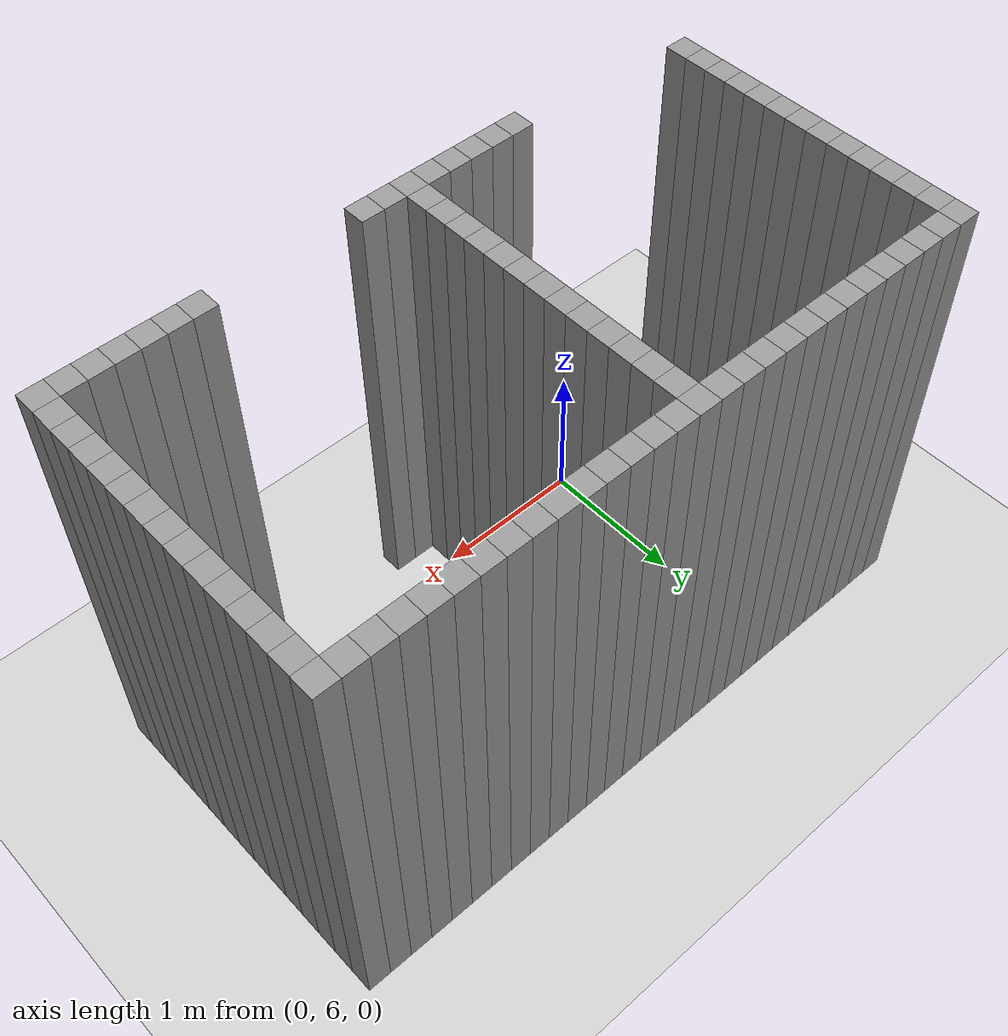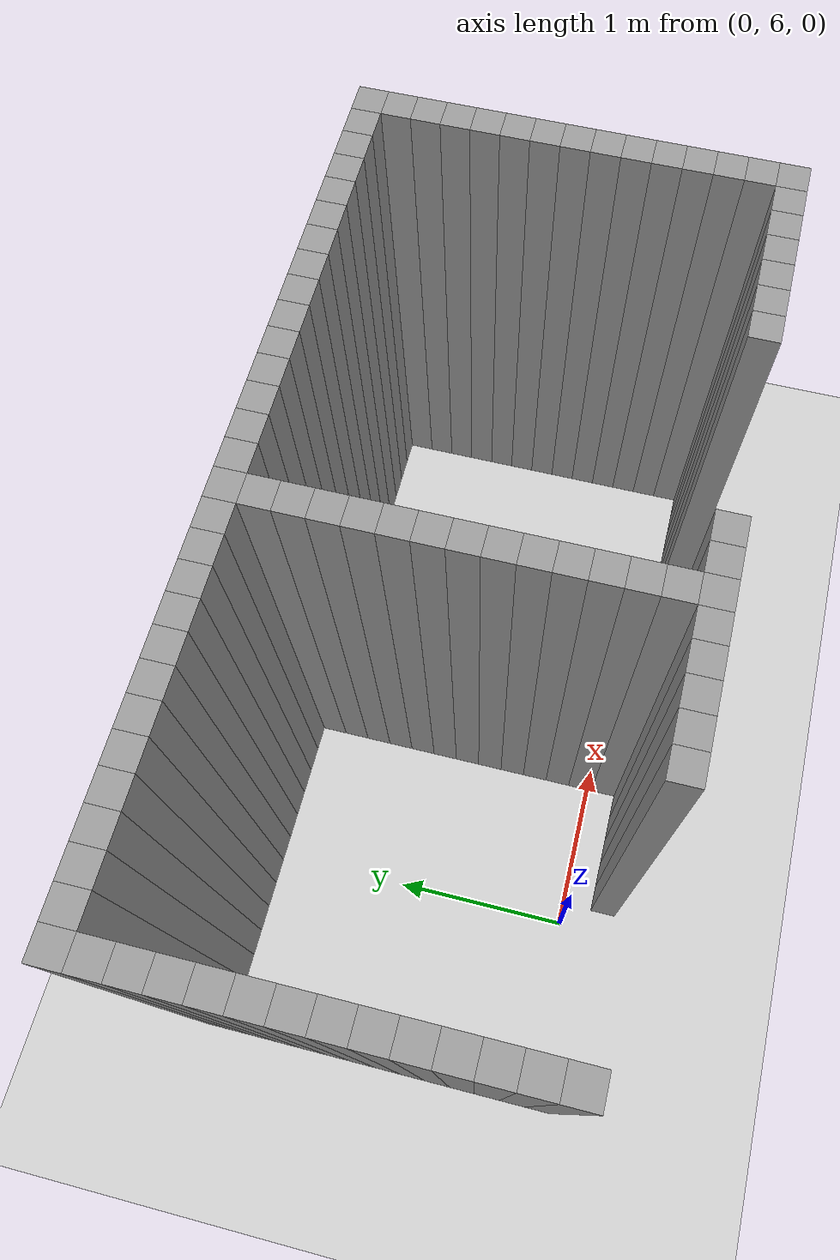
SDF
<sdf version="1.7">
 <world name="default">
  <model name="ground_plane">
   <static>1</static>
   <link name="link">
    <collision name="collision">
     <geometry><plane><normal>0 0 1</normal><size>100 100</size></plane></geometry>
     <surface>
      <contact><collide_bitmask>65535</collide_bitmask></contact>
      <friction><ode><mu>100</mu><mu2>50</mu2></ode></friction>
     </surface>
    </collision>
    <visual name="visual">
     <cast_shadows>0</cast_shadows>
     <geometry><plane><normal>0 0 1</normal><size>100 100</size></plane></geometry>
     <material>
      <script><uri>file://media/materials/scripts/gazebo.material</uri><name>Gazebo/Grey</name></script>
     </material>
    </visual>
   </link>
  </model>
  <model name="image45003">
   <pose>-1 -1 0 0 -0 0</pose>
   <link name="Wall_46">
    <collision name="Wall_46_Collision">
     <geometry><box><size>0.15 0.15 3</size></box></geometry>
     <pose>0 0 1.5 0 -0 0</pose>
    </collision>
    <visual name="Wall_46_Visual">
     <pose>0 0 1.5 0 -0 0</pose>
     <geometry><box><size>0.15 0.15 3</size></box></geometry>
     <material>
      <script><uri>file://media/materials/scripts/gazebo.material</uri><name>Gazebo/Grey</name></script>
      <ambient>1 1 1 1</ambient>
     </material>
     <meta><layer>0</layer></meta>
    </visual>
    <pose>0.0 6.8999999999999995 0 0 -0 0</pose>
   </link>
   <link name="Wall_47">
    <collision name="Wall_47_Collision">
     <geometry><box><size>0.15 0.15 3</size></box></geometry>
     <pose>0 0 1.5 0 -0 0</pose>
    </collision>
    <visual name="Wall_47_Visual">
     <pose>0 0 1.5 0 -0 0</pose>
     <geometry><box><size>0.15 0.15 3</size></box></geometry>
     <material>
      <script><uri>file://media/materials/scripts/gazebo.material</uri><name>Gazebo/Grey</name></script>
      <ambient>1 1 1 1</ambient>
     </material>
     <meta><layer>0</layer></meta>
    </visual>
    <pose>0.0 7.05 0 0 -0 0</pose>
   </link>
   <link name="Wall_48">
    <collision name="Wall_48_Collision">
     <geometry><box><size>0.15 0.15 3</size></box></geometry>
     <pose>0 0 1.5 0 -0 0</pose>
    </collision>
    <visual name="Wall_48_Visual">
     <pose>0 0 1.5 0 -0 0</pose>
     <geometry><box><size>0.15 0.15 3</size></box></geometry>
     <material>
      <script><uri>file://media/materials/scripts/gazebo.material</uri><name>Gazebo/Grey</name></script>
      <ambient>1 1 1 1</ambient>
     </material>
     <meta><layer>0</layer></meta>
    </visual>
    <pose>0.0 7.199999999999999 0 0 -0 0</pose>
   </link>
   <link name="Wall_49">
    <collision name="Wall_49_Collision">
     <geometry><box><size>0.15 0.15 3</size></box></geometry>
     <pose>0 0 1.5 0 -0 0</pose>
    </collision>
    <visual name="Wall_49_Visual">
     <pose>0 0 1.5 0 -0 0</pose>
     <geometry><box><size>0.15 0.15 3</size></box></geometry>
     <material>
      <script><uri>file://media/materials/scripts/gazebo.material</uri><name>Gazebo/Grey</name></script>
      <ambient>1 1 1 1</ambient>
     </material>
     <meta><layer>0</layer></meta>
    </visual>
    <pose>0.0 7.35 0 0 -0 0</pose>
   </link>
   <link name="Wall_50">
    <collision name="Wall_50_Collision">
     <geometry><box><size>0.15 0.15 3</size></box></geometry>
     <pose>0 0 1.5 0 -0 0</pose>
    </collision>
    <visual name="Wall_50_Visual">
     <pose>0 0 1.5 0 -0 0</pose>
     <geometry><box><size>0.15 0.15 3</size></box></geometry>
     <material>
      <script><uri>file://media/materials/scripts/gazebo.material</uri><name>Gazebo/Grey</name></script>
      <ambient>1 1 1 1</ambient>
     </material>
     <meta><layer>0</layer></meta>
    </visual>
    <pose>0.0 7.5 0 0 -0 0</pose>
   </link>
   <link name="Wall_51">
    <collision name="Wall_51_Collision">
     <geometry><box><size>0.15 0.15 3</size></box></geometry>
     <pose>0 0 1.5 0 -0 0</pose>
    </collision>
    <visual name="Wall_51_Visual">
     <pose>0 0 1.5 0 -0 0</pose>
     <geometry><box><size>0.15 0.15 3</size></box></geometry>
     <material>
      <script><uri>file://media/materials/scripts/gazebo.material</uri><name>Gazebo/Grey</name></script>
      <ambient>1 1 1 1</ambient>
     </material>
     <meta><layer>0</layer></meta>
    </visual>
    <pose>0.0 7.6499999999999995 0 0 -0 0</pose>
   </link>
   <link name="Wall_52">
    <collision name="Wall_52_Collision">
     <geometry><box><size>0.15 0.15 3</size></box></geometry>
     <pose>0 0 1.5 0 -0 0</pose>
    </collision>
    <visual name="Wall_52_Visual">
     <pose>0 0 1.5 0 -0 0</pose>
     <geometry><box><size>0.15 0.15 3</size></box></geometry>
     <material>
      <script><uri>file://media/materials/scripts/gazebo.material</uri><name>Gazebo/Grey</name></script>
      <ambient>1 1 1 1</ambient>
     </material>
     <meta><layer>0</layer></meta>
    </visual>
    <pose>0.0 7.8 0 0 -0 0</pose>
   </link>
   <link name="Wall_53">
    <collision name="Wall_53_Collision">
     <geometry><box><size>0.15 0.15 3</size></box></geometry>
     <pose>0 0 1.5 0 -0 0</pose>
    </collision>
    <visual name="Wall_53_Visual">
     <pose>0 0 1.5 0 -0 0</pose>
     <geometry><box><size>0.15 0.15 3</size></box></geometry>
     <material>
      <script><uri>file://media/materials/scripts/gazebo.material</uri><name>Gazebo/Grey</name></script>
      <ambient>1 1 1 1</ambient>
     </material>
     <meta><layer>0</layer></meta>
    </visual>
    <pose>0.0 7.949999999999999 0 0 -0 0</pose>
   </link>
   <link name="Wall_54">
    <collision name="Wall_54_Collision">
     <geometry><box><size>0.15 0.15 3</size></box></geometry>
     <pose>0 0 1.5 0 -0 0</pose>
    </collision>
    <visual name="Wall_54_Visual">
     <pose>0 0 1.5 0 -0 0</pose>
     <geometry><box><size>0.15 0.15 3</size></box></geometry>
     <material>
      <script><uri>file://media/materials/scripts/gazebo.material</uri><name>Gazebo/Grey</name></script>
      <ambient>1 1 1 1</ambient>
     </material>
     <meta><layer>0</layer></meta>
    </visual>
    <pose>0.0 8.1 0 0 -0 0</pose>
   </link>
   <link name="Wall_55">
    <collision name="Wall_55_Collision">
     <geometry><box><size>0.15 0.15 3</size></box></geometry>
     <pose>0 0 1.5 0 -0 0</pose>
    </collision>
    <visual name="Wall_55_Visual">
     <pose>0 0 1.5 0 -0 0</pose>
     <geometry><box><size>0.15 0.15 3</size></box></geometry>
     <material>
      <script><uri>file://media/materials/scripts/gazebo.material</uri><name>Gazebo/Grey</name></script>
      <ambient>1 1 1 1</ambient>
     </material>
     <meta><layer>0</layer></meta>
    </visual>
    <pose>0.0 8.25 0 0 -0 0</pose>
   </link>
   <link name="Wall_56">
    <collision name="Wall_56_Collision">
     <geometry><box><size>0.15 0.15 3</size></box></geometry>
     <pose>0 0 1.5 0 -0 0</pose>
    </collision>
    <visual name="Wall_56_Visual">
     <pose>0 0 1.5 0 -0 0</pose>
     <geometry><box><size>0.15 0.15 3</size></box></geometry>
     <material>
      <script><uri>file://media/materials/scripts/gazebo.material</uri><name>Gazebo/Grey</name></script>
      <ambient>1 1 1 1</ambient>
     </material>
     <meta><layer>0</layer></meta>
    </visual>
    <pose>0.0 8.4 0 0 -0 0</pose>
   </link>
   <link name="Wall_57">
    <collision name="Wall_57_Collision">
     <geometry><box><size>0.15 0.15 3</size></box></geometry>
     <pose>0 0 1.5 0 -0 0</pose>
    </collision>
    <visual name="Wall_57_Visual">
     <pose>0 0 1.5 0 -0 0</pose>
     <geometry><box><size>0.15 0.15 3</size></box></geometry>
     <material>
      <script><uri>file://media/materials/scripts/gazebo.material</uri><name>Gazebo/Grey</name></script>
      <ambient>1 1 1 1</ambient>
     </material>
     <meta><layer>0</layer></meta>
    </visual>
    <pose>0.0 8.549999999999999 0 0 -0 0</pose>
   </link>
   <link name="Wall_58">
    <collision name="Wall_58_Collision">
     <geometry><box><size>0.15 0.15 3</size></box></geometry>
     <pose>0 0 1.5 0 -0 0</pose>
    </collision>
    <visual name="Wall_58_Visual">
     <pose>0 0 1.5 0 -0 0</pose>
     <geometry><box><size>0.15 0.15 3</size></box></geometry>
     <material>
      <script><uri>file://media/materials/scripts/gazebo.material</uri><name>Gazebo/Grey</name></script>
      <ambient>1 1 1 1</ambient>
     </material>
     <meta><layer>0</layer></meta>
    </visual>
    <pose>0.0 8.7 0 0 -0 0</pose>
   </link>
   <link name="Wall_59">
    <collision name="Wall_59_Collision">
     <geometry><box><size>0.15 0.15 3</size></box></geometry>
     <pose>0 0 1.5 0 -0 0</pose>
    </collision>
    <visual name="Wall_59_Visual">
     <pose>0 0 1.5 0 -0 0</pose>
     <geometry><box><size>0.15 0.15 3</size></box></geometry>
     <material>
      <script><uri>file://media/materials/scripts/gazebo.material</uri><name>Gazebo/Grey</name></script>
      <ambient>1 1 1 1</ambient>
     </material>
     <meta><layer>0</layer></meta>
    </visual>
    <pose>0.0 8.85 0 0 -0 0</pose>
   </link>
   <link name="Wall_64">
    <collision name="Wall_64_Collision">
     <geometry><box><size>0.15 0.15 3</size></box></geometry>
     <pose>0 0 1.5 0 -0 0</pose>
    </collision>
    <visual name="Wall_64_Visual">
     <pose>0 0 1.5 0 -0 0</pose>
     <geometry><box><size>0.15 0.15 3</size></box></geometry>
     <material>
      <script><uri>file://media/materials/scripts/gazebo.material</uri><name>Gazebo/Grey</name></script>
      <ambient>1 1 1 1</ambient>
     </material>
     <meta><layer>0</layer></meta>
    </visual>
    <pose>0.15 8.85 0 0 -0 0</pose>
   </link>
   <link name="Wall_68">
    <collision name="Wall_68_Collision">
     <geometry><box><size>0.15 0.15 3</size></box></geometry>
     <pose>0 0 1.5 0 -0 0</pose>
    </collision>
    <visual name="Wall_68_Visual">
     <pose>0 0 1.5 0 -0 0</pose>
     <geometry><box><size>0.15 0.15 3</size></box></geometry>
     <material>
      <script><uri>file://media/materials/scripts/gazebo.material</uri><name>Gazebo/Grey</name></script>
      <ambient>1 1 1 1</ambient>
     </material>
     <meta><layer>0</layer></meta>
    </visual>
    <pose>0.3 8.85 0 0 -0 0</pose>
   </link>
   <link name="Wall_72">
    <collision name="Wall_72_Collision">
     <geometry><box><size>0.15 0.15 3</size></box></geometry>
     <pose>0 0 1.5 0 -0 0</pose>
    </collision>
    <visual name="Wall_72_Visual">
     <pose>0 0 1.5 0 -0 0</pose>
     <geometry><box><size>0.15 0.15 3</size></box></geometry>
     <material>
      <script><uri>file://media/materials/scripts/gazebo.material</uri><name>Gazebo/Grey</name></script>
      <ambient>1 1 1 1</ambient>
     </material>
     <meta><layer>0</layer></meta>
    </visual>
    <pose>0.44999999999999996 8.85 0 0 -0 0</pose>
   </link>
   <link name="Wall_76">
    <collision name="Wall_76_Collision">
     <geometry><box><size>0.15 0.15 3</size></box></geometry>
     <pose>0 0 1.5 0 -0 0</pose>
    </collision>
    <visual name="Wall_76_Visual">
     <pose>0 0 1.5 0 -0 0</pose>
     <geometry><box><size>0.15 0.15 3</size></box></geometry>
     <material>
      <script><uri>file://media/materials/scripts/gazebo.material</uri><name>Gazebo/Grey</name></script>
      <ambient>1 1 1 1</ambient>
     </material>
     <meta><layer>0</layer></meta>
    </visual>
    <pose>0.6 8.85 0 0 -0 0</pose>
   </link>
   <link name="Wall_80">
    <collision name="Wall_80_Collision">
     <geometry><box><size>0.15 0.15 3</size></box></geometry>
     <pose>0 0 1.5 0 -0 0</pose>
    </collision>
    <visual name="Wall_80_Visual">
     <pose>0 0 1.5 0 -0 0</pose>
     <geometry><box><size>0.15 0.15 3</size></box></geometry>
     <material>
      <script><uri>file://media/materials/scripts/gazebo.material</uri><name>Gazebo/Grey</name></script>
      <ambient>1 1 1 1</ambient>
     </material>
     <meta><layer>0</layer></meta>
    </visual>
    <pose>0.75 8.85 0 0 -0 0</pose>
   </link>
   <link name="Wall_84">
    <collision name="Wall_84_Collision">
     <geometry><box><size>0.15 0.15 3</size></box></geometry>
     <pose>0 0 1.5 0 -0 0</pose>
    </collision>
    <visual name="Wall_84_Visual">
     <pose>0 0 1.5 0 -0 0</pose>
     <geometry><box><size>0.15 0.15 3</size></box></geometry>
     <material>
      <script><uri>file://media/materials/scripts/gazebo.material</uri><name>Gazebo/Grey</name></script>
      <ambient>1 1 1 1</ambient>
     </material>
     <meta><layer>0</layer></meta>
    </visual>
    <pose>0.8999999999999999 8.85 0 0 -0 0</pose>
   </link>
   <link name="Wall_88">
    <collision name="Wall_88_Collision">
     <geometry><box><size>0.15 0.15 3</size></box></geometry>
     <pose>0 0 1.5 0 -0 0</pose>
    </collision>
    <visual name="Wall_88_Visual">
     <pose>0 0 1.5 0 -0 0</pose>
     <geometry><box><size>0.15 0.15 3</size></box></geometry>
     <material>
      <script><uri>file://media/materials/scripts/gazebo.material</uri><name>Gazebo/Grey</name></script>
      <ambient>1 1 1 1</ambient>
     </material>
     <meta><layer>0</layer></meta>
    </visual>
    <pose>1.05 8.85 0 0 -0 0</pose>
   </link>
   <link name="Wall_92">
    <collision name="Wall_92_Collision">
     <geometry><box><size>0.15 0.15 3</size></box></geometry>
     <pose>0 0 1.5 0 -0 0</pose>
    </collision>
    <visual name="Wall_92_Visual">
     <pose>0 0 1.5 0 -0 0</pose>
     <geometry><box><size>0.15 0.15 3</size></box></geometry>
     <material>
      <script><uri>file://media/materials/scripts/gazebo.material</uri><name>Gazebo/Grey</name></script>
      <ambient>1 1 1 1</ambient>
     </material>
     <meta><layer>0</layer></meta>
    </visual>
    <pose>1.2 6.75 0 0 -0 0</pose>
   </link>
   <link name="Wall_93">
    <collision name="Wall_93_Collision">
     <geometry><box><size>0.15 0.15 3</size></box></geometry>
     <pose>0 0 1.5 0 -0 0</pose>
    </collision>
    <visual name="Wall_93_Visual">
     <pose>0 0 1.5 0 -0 0</pose>
     <geometry><box><size>0.15 0.15 3</size></box></geometry>
     <material>
      <script><uri>file://media/materials/scripts/gazebo.material</uri><name>Gazebo/Grey</name></script>
      <ambient>1 1 1 1</ambient>
     </material>
     <meta><layer>0</layer></meta>
    </visual>
    <pose>1.2 8.85 0 0 -0 0</pose>
   </link>
   <link name="Wall_98">
    <collision name="Wall_98_Collision">
     <geometry><box><size>0.15 0.15 3</size></box></geometry>
     <pose>0 0 1.5 0 -0 0</pose>
    </collision>
    <visual name="Wall_98_Visual">
     <pose>0 0 1.5 0 -0 0</pose>
     <geometry><box><size>0.15 0.15 3</size></box></geometry>
     <material>
      <script><uri>file://media/materials/scripts/gazebo.material</uri><name>Gazebo/Grey</name></script>
      <ambient>1 1 1 1</ambient>
     </material>
     <meta><layer>0</layer></meta>
    </visual>
    <pose>1.3499999999999999 6.75 0 0 -0 0</pose>
   </link>
   <link name="Wall_99">
    <collision name="Wall_99_Collision">
     <geometry><box><size>0.15 0.15 3</size></box></geometry>
     <pose>0 0 1.5 0 -0 0</pose>
    </collision>
    <visual name="Wall_99_Visual">
     <pose>0 0 1.5 0 -0 0</pose>
     <geometry><box><size>0.15 0.15 3</size></box></geometry>
     <material>
      <script><uri>file://media/materials/scripts/gazebo.material</uri><name>Gazebo/Grey</name></script>
      <ambient>1 1 1 1</ambient>
     </material>
     <meta><layer>0</layer></meta>
    </visual>
    <pose>1.3499999999999999 8.85 0 0 -0 0</pose>
   </link>
   <link name="Wall_104">
    <collision name="Wall_104_Collision">
     <geometry><box><size>0.15 0.15 3</size></box></geometry>
     <pose>0 0 1.5 0 -0 0</pose>
    </collision>
    <visual name="Wall_104_Visual">
     <pose>0 0 1.5 0 -0 0</pose>
     <geometry><box><size>0.15 0.15 3</size></box></geometry>
     <material>
      <script><uri>file://media/materials/scripts/gazebo.material</uri><name>Gazebo/Grey</name></script>
      <ambient>1 1 1 1</ambient>
     </material>
     <meta><layer>0</layer></meta>
    </visual>
    <pose>1.5 6.75 0 0 -0 0</pose>
   </link>
   <link name="Wall_105">
    <collision name="Wall_105_Collision">
     <geometry><box><size>0.15 0.15 3</size></box></geometry>
     <pose>0 0 1.5 0 -0 0</pose>
    </collision>
    <visual name="Wall_105_Visual">
     <pose>0 0 1.5 0 -0 0</pose>
     <geometry><box><size>0.15 0.15 3</size></box></geometry>
     <material>
      <script><uri>file://media/materials/scripts/gazebo.material</uri><name>Gazebo/Grey</name></script>
      <ambient>1 1 1 1</ambient>
     </material>
     <meta><layer>0</layer></meta>
    </visual>
    <pose>1.5 8.85 0 0 -0 0</pose>
   </link>
   <link name="Wall_110">
    <collision name="Wall_110_Collision">
     <geometry><box><size>0.15 0.15 3</size></box></geometry>
     <pose>0 0 1.5 0 -0 0</pose>
    </collision>
    <visual name="Wall_110_Visual">
     <pose>0 0 1.5 0 -0 0</pose>
     <geometry><box><size>0.15 0.15 3</size></box></geometry>
     <material>
      <script><uri>file://media/materials/scripts/gazebo.material</uri><name>Gazebo/Grey</name></script>
      <ambient>1 1 1 1</ambient>
     </material>
     <meta><layer>0</layer></meta>
    </visual>
    <pose>1.65 6.75 0 0 -0 0</pose>
   </link>
   <link name="Wall_111">
    <collision name="Wall_111_Collision">
     <geometry><box><size>0.15 0.15 3</size></box></geometry>
     <pose>0 0 1.5 0 -0 0</pose>
    </collision>
    <visual name="Wall_111_Visual">
     <pose>0 0 1.5 0 -0 0</pose>
     <geometry><box><size>0.15 0.15 3</size></box></geometry>
     <material>
      <script><uri>file://media/materials/scripts/gazebo.material</uri><name>Gazebo/Grey</name></script>
      <ambient>1 1 1 1</ambient>
     </material>
     <meta><layer>0</layer></meta>
    </visual>
    <pose>1.65 8.85 0 0 -0 0</pose>
   </link>
   <link name="Wall_116">
    <collision name="Wall_116_Collision">
     <geometry><box><size>0.15 0.15 3</size></box></geometry>
     <pose>0 0 1.5 0 -0 0</pose>
    </collision>
    <visual name="Wall_116_Visual">
     <pose>0 0 1.5 0 -0 0</pose>
     <geometry><box><size>0.15 0.15 3</size></box></geometry>
     <material>
      <script><uri>file://media/materials/scripts/gazebo.material</uri><name>Gazebo/Grey</name></script>
      <ambient>1 1 1 1</ambient>
     </material>
     <meta><layer>0</layer></meta>
    </visual>
    <pose>1.7999999999999998 6.75 0 0 -0 0</pose>
   </link>
   <link name="Wall_117">
    <collision name="Wall_117_Collision">
     <geometry><box><size>0.15 0.15 3</size></box></geometry>
     <pose>0 0 1.5 0 -0 0</pose>
    </collision>
    <visual name="Wall_117_Visual">
     <pose>0 0 1.5 0 -0 0</pose>
     <geometry><box><size>0.15 0.15 3</size></box></geometry>
     <material>
      <script><uri>file://media/materials/scripts/gazebo.material</uri><name>Gazebo/Grey</name></script>
      <ambient>1 1 1 1</ambient>
     </material>
     <meta><layer>0</layer></meta>
    </visual>
    <pose>1.7999999999999998 8.85 0 0 -0 0</pose>
   </link>
   <link name="Wall_130">
    <collision name="Wall_130_Collision">
     <geometry><box><size>0.15 0.15 3</size></box></geometry>
     <pose>0 0 1.5 0 -0 0</pose>
    </collision>
    <visual name="Wall_130_Visual">
     <pose>0 0 1.5 0 -0 0</pose>
     <geometry><box><size>0.15 0.15 3</size></box></geometry>
     <material>
      <script><uri>file://media/materials/scripts/gazebo.material</uri><name>Gazebo/Grey</name></script>
      <ambient>1 1 1 1</ambient>
     </material>
     <meta><layer>0</layer></meta>
    </visual>
    <pose>1.95 6.75 0 0 -0 0</pose>
   </link>
   <link name="Wall_131">
    <collision name="Wall_131_Collision">
     <geometry><box><size>0.15 0.15 3</size></box></geometry>
     <pose>0 0 1.5 0 -0 0</pose>
    </collision>
    <visual name="Wall_131_Visual">
     <pose>0 0 1.5 0 -0 0</pose>
     <geometry><box><size>0.15 0.15 3</size></box></geometry>
     <material>
      <script><uri>file://media/materials/scripts/gazebo.material</uri><name>Gazebo/Grey</name></script>
      <ambient>1 1 1 1</ambient>
     </material>
     <meta><layer>0</layer></meta>
    </visual>
    <pose>1.95 6.8999999999999995 0 0 -0 0</pose>
   </link>
   <link name="Wall_132">
    <collision name="Wall_132_Collision">
     <geometry><box><size>0.15 0.15 3</size></box></geometry>
     <pose>0 0 1.5 0 -0 0</pose>
    </collision>
    <visual name="Wall_132_Visual">
     <pose>0 0 1.5 0 -0 0</pose>
     <geometry><box><size>0.15 0.15 3</size></box></geometry>
     <material>
      <script><uri>file://media/materials/scripts/gazebo.material</uri><name>Gazebo/Grey</name></script>
      <ambient>1 1 1 1</ambient>
     </material>
     <meta><layer>0</layer></meta>
    </visual>
    <pose>1.95 7.05 0 0 -0 0</pose>
   </link>
   <link name="Wall_133">
    <collision name="Wall_133_Collision">
     <geometry><box><size>0.15 0.15 3</size></box></geometry>
     <pose>0 0 1.5 0 -0 0</pose>
    </collision>
    <visual name="Wall_133_Visual">
     <pose>0 0 1.5 0 -0 0</pose>
     <geometry><box><size>0.15 0.15 3</size></box></geometry>
     <material>
      <script><uri>file://media/materials/scripts/gazebo.material</uri><name>Gazebo/Grey</name></script>
      <ambient>1 1 1 1</ambient>
     </material>
     <meta><layer>0</layer></meta>
    </visual>
    <pose>1.95 7.199999999999999 0 0 -0 0</pose>
   </link>
   <link name="Wall_134">
    <collision name="Wall_134_Collision">
     <geometry><box><size>0.15 0.15 3</size></box></geometry>
     <pose>0 0 1.5 0 -0 0</pose>
    </collision>
    <visual name="Wall_134_Visual">
     <pose>0 0 1.5 0 -0 0</pose>
     <geometry><box><size>0.15 0.15 3</size></box></geometry>
     <material>
      <script><uri>file://media/materials/scripts/gazebo.material</uri><name>Gazebo/Grey</name></script>
      <ambient>1 1 1 1</ambient>
     </material>
     <meta><layer>0</layer></meta>
    </visual>
    <pose>1.95 7.35 0 0 -0 0</pose>
   </link>
   <link name="Wall_135">
    <collision name="Wall_135_Collision">
     <geometry><box><size>0.15 0.15 3</size></box></geometry>
     <pose>0 0 1.5 0 -0 0</pose>
    </collision>
    <visual name="Wall_135_Visual">
     <pose>0 0 1.5 0 -0 0</pose>
     <geometry><box><size>0.15 0.15 3</size></box></geometry>
     <material>
      <script><uri>file://media/materials/scripts/gazebo.material</uri><name>Gazebo/Grey</name></script>
      <ambient>1 1 1 1</ambient>
     </material>
     <meta><layer>0</layer></meta>
    </visual>
    <pose>1.95 7.5 0 0 -0 0</pose>
   </link>
   <link name="Wall_136">
    <collision name="Wall_136_Collision">
     <geometry><box><size>0.15 0.15 3</size></box></geometry>
     <pose>0 0 1.5 0 -0 0</pose>
    </collision>
    <visual name="Wall_136_Visual">
     <pose>0 0 1.5 0 -0 0</pose>
     <geometry><box><size>0.15 0.15 3</size></box></geometry>
     <material>
      <script><uri>file://media/materials/scripts/gazebo.material</uri><name>Gazebo/Grey</name></script>
      <ambient>1 1 1 1</ambient>
     </material>
     <meta><layer>0</layer></meta>
    </visual>
    <pose>1.95 7.6499999999999995 0 0 -0 0</pose>
   </link>
   <link name="Wall_137">
    <collision name="Wall_137_Collision">
     <geometry><box><size>0.15 0.15 3</size></box></geometry>
     <pose>0 0 1.5 0 -0 0</pose>
    </collision>
    <visual name="Wall_137_Visual">
     <pose>0 0 1.5 0 -0 0</pose>
     <geometry><box><size>0.15 0.15 3</size></box></geometry>
     <material>
      <script><uri>file://media/materials/scripts/gazebo.material</uri><name>Gazebo/Grey</name></script>
      <ambient>1 1 1 1</ambient>
     </material>
     <meta><layer>0</layer></meta>
    </visual>
    <pose>1.95 7.8 0 0 -0 0</pose>
   </link>
   <link name="Wall_138">
    <collision name="Wall_138_Collision">
     <geometry><box><size>0.15 0.15 3</size></box></geometry>
     <pose>0 0 1.5 0 -0 0</pose>
    </collision>
    <visual name="Wall_138_Visual">
     <pose>0 0 1.5 0 -0 0</pose>
     <geometry><box><size>0.15 0.15 3</size></box></geometry>
     <material>
      <script><uri>file://media/materials/scripts/gazebo.material</uri><name>Gazebo/Grey</name></script>
      <ambient>1 1 1 1</ambient>
     </material>
     <meta><layer>0</layer></meta>
    </visual>
    <pose>1.95 7.949999999999999 0 0 -0 0</pose>
   </link>
   <link name="Wall_139">
    <collision name="Wall_139_Collision">
     <geometry><box><size>0.15 0.15 3</size></box></geometry>
     <pose>0 0 1.5 0 -0 0</pose>
    </collision>
    <visual name="Wall_139_Visual">
     <pose>0 0 1.5 0 -0 0</pose>
     <geometry><box><size>0.15 0.15 3</size></box></geometry>
     <material>
      <script><uri>file://media/materials/scripts/gazebo.material</uri><name>Gazebo/Grey</name></script>
      <ambient>1 1 1 1</ambient>
     </material>
     <meta><layer>0</layer></meta>
    </visual>
    <pose>1.95 8.1 0 0 -0 0</pose>
   </link>
   <link name="Wall_140">
    <collision name="Wall_140_Collision">
     <geometry><box><size>0.15 0.15 3</size></box></geometry>
     <pose>0 0 1.5 0 -0 0</pose>
    </collision>
    <visual name="Wall_140_Visual">
     <pose>0 0 1.5 0 -0 0</pose>
     <geometry><box><size>0.15 0.15 3</size></box></geometry>
     <material>
      <script><uri>file://media/materials/scripts/gazebo.material</uri><name>Gazebo/Grey</name></script>
      <ambient>1 1 1 1</ambient>
     </material>
     <meta><layer>0</layer></meta>
    </visual>
    <pose>1.95 8.25 0 0 -0 0</pose>
   </link>
   <link name="Wall_141">
    <collision name="Wall_141_Collision">
     <geometry><box><size>0.15 0.15 3</size></box></geometry>
     <pose>0 0 1.5 0 -0 0</pose>
    </collision>
    <visual name="Wall_141_Visual">
     <pose>0 0 1.5 0 -0 0</pose>
     <geometry><box><size>0.15 0.15 3</size></box></geometry>
     <material>
      <script><uri>file://media/materials/scripts/gazebo.material</uri><name>Gazebo/Grey</name></script>
      <ambient>1 1 1 1</ambient>
     </material>
     <meta><layer>0</layer></meta>
    </visual>
    <pose>1.95 8.4 0 0 -0 0</pose>
   </link>
   <link name="Wall_142">
    <collision name="Wall_142_Collision">
     <geometry><box><size>0.15 0.15 3</size></box></geometry>
     <pose>0 0 1.5 0 -0 0</pose>
    </collision>
    <visual name="Wall_142_Visual">
     <pose>0 0 1.5 0 -0 0</pose>
     <geometry><box><size>0.15 0.15 3</size></box></geometry>
     <material>
      <script><uri>file://media/materials/scripts/gazebo.material</uri><name>Gazebo/Grey</name></script>
      <ambient>1 1 1 1</ambient>
     </material>
     <meta><layer>0</layer></meta>
    </visual>
    <pose>1.95 8.549999999999999 0 0 -0 0</pose>
   </link>
   <link name="Wall_143">
    <collision name="Wall_143_Collision">
     <geometry><box><size>0.15 0.15 3</size></box></geometry>
     <pose>0 0 1.5 0 -0 0</pose>
    </collision>
    <visual name="Wall_143_Visual">
     <pose>0 0 1.5 0 -0 0</pose>
     <geometry><box><size>0.15 0.15 3</size></box></geometry>
     <material>
      <script><uri>file://media/materials/scripts/gazebo.material</uri><name>Gazebo/Grey</name></script>
      <ambient>1 1 1 1</ambient>
     </material>
     <meta><layer>0</layer></meta>
    </visual>
    <pose>1.95 8.7 0 0 -0 0</pose>
   </link>
   <link name="Wall_144">
    <collision name="Wall_144_Collision">
     <geometry><box><size>0.15 0.15 3</size></box></geometry>
     <pose>0 0 1.5 0 -0 0</pose>
    </collision>
    <visual name="Wall_144_Visual">
     <pose>0 0 1.5 0 -0 0</pose>
     <geometry><box><size>0.15 0.15 3</size></box></geometry>
     <material>
      <script><uri>file://media/materials/scripts/gazebo.material</uri><name>Gazebo/Grey</name></script>
      <ambient>1 1 1 1</ambient>
     </material>
     <meta><layer>0</layer></meta>
    </visual>
    <pose>1.95 8.85 0 0 -0 0</pose>
   </link>
   <link name="Wall_149">
    <collision name="Wall_149_Collision">
     <geometry><box><size>0.15 0.15 3</size></box></geometry>
     <pose>0 0 1.5 0 -0 0</pose>
    </collision>
    <visual name="Wall_149_Visual">
     <pose>0 0 1.5 0 -0 0</pose>
     <geometry><box><size>0.15 0.15 3</size></box></geometry>
     <material>
      <script><uri>file://media/materials/scripts/gazebo.material</uri><name>Gazebo/Grey</name></script>
      <ambient>1 1 1 1</ambient>
     </material>
     <meta><layer>0</layer></meta>
    </visual>
    <pose>2.1 6.75 0 0 -0 0</pose>
   </link>
   <link name="Wall_150">
    <collision name="Wall_150_Collision">
     <geometry><box><size>0.15 0.15 3</size></box></geometry>
     <pose>0 0 1.5 0 -0 0</pose>
    </collision>
    <visual name="Wall_150_Visual">
     <pose>0 0 1.5 0 -0 0</pose>
     <geometry><box><size>0.15 0.15 3</size></box></geometry>
     <material>
      <script><uri>file://media/materials/scripts/gazebo.material</uri><name>Gazebo/Grey</name></script>
      <ambient>1 1 1 1</ambient>
     </material>
     <meta><layer>0</layer></meta>
    </visual>
    <pose>2.1 8.85 0 0 -0 0</pose>
   </link>
   <link name="Wall_155">
    <collision name="Wall_155_Collision">
     <geometry><box><size>0.15 0.15 3</size></box></geometry>
     <pose>0 0 1.5 0 -0 0</pose>
    </collision>
    <visual name="Wall_155_Visual">
     <pose>0 0 1.5 0 -0 0</pose>
     <geometry><box><size>0.15 0.15 3</size></box></geometry>
     <material>
      <script><uri>file://media/materials/scripts/gazebo.material</uri><name>Gazebo/Grey</name></script>
      <ambient>1 1 1 1</ambient>
     </material>
     <meta><layer>0</layer></meta>
    </visual>
    <pose>2.25 6.75 0 0 -0 0</pose>
   </link>
   <link name="Wall_156">
    <collision name="Wall_156_Collision">
     <geometry><box><size>0.15 0.15 3</size></box></geometry>
     <pose>0 0 1.5 0 -0 0</pose>
    </collision>
    <visual name="Wall_156_Visual">
     <pose>0 0 1.5 0 -0 0</pose>
     <geometry><box><size>0.15 0.15 3</size></box></geometry>
     <material>
      <script><uri>file://media/materials/scripts/gazebo.material</uri><name>Gazebo/Grey</name></script>
      <ambient>1 1 1 1</ambient>
     </material>
     <meta><layer>0</layer></meta>
    </visual>
    <pose>2.25 8.85 0 0 -0 0</pose>
   </link>
   <link name="Wall_161">
    <collision name="Wall_161_Collision">
     <geometry><box><size>0.15 0.15 3</size></box></geometry>
     <pose>0 0 1.5 0 -0 0</pose>
    </collision>
    <visual name="Wall_161_Visual">
     <pose>0 0 1.5 0 -0 0</pose>
     <geometry><box><size>0.15 0.15 3</size></box></geometry>
     <material>
      <script><uri>file://media/materials/scripts/gazebo.material</uri><name>Gazebo/Grey</name></script>
      <ambient>1 1 1 1</ambient>
     </material>
     <meta><layer>0</layer></meta>
    </visual>
    <pose>2.4 8.85 0 0 -0 0</pose>
   </link>
   <link name="Wall_166">
    <collision name="Wall_166_Collision">
     <geometry><box><size>0.15 0.15 3</size></box></geometry>
     <pose>0 0 1.5 0 -0 0</pose>
    </collision>
    <visual name="Wall_166_Visual">
     <pose>0 0 1.5 0 -0 0</pose>
     <geometry><box><size>0.15 0.15 3</size></box></geometry>
     <material>
      <script><uri>file://media/materials/scripts/gazebo.material</uri><name>Gazebo/Grey</name></script>
      <ambient>1 1 1 1</ambient>
     </material>
     <meta><layer>0</layer></meta>
    </visual>
    <pose>2.55 8.85 0 0 -0 0</pose>
   </link>
   <link name="Wall_171">
    <collision name="Wall_171_Collision">
     <geometry><box><size>0.15 0.15 3</size></box></geometry>
     <pose>0 0 1.5 0 -0 0</pose>
    </collision>
    <visual name="Wall_171_Visual">
     <pose>0 0 1.5 0 -0 0</pose>
     <geometry><box><size>0.15 0.15 3</size></box></geometry>
     <material>
      <script><uri>file://media/materials/scripts/gazebo.material</uri><name>Gazebo/Grey</name></script>
      <ambient>1 1 1 1</ambient>
     </material>
     <meta><layer>0</layer></meta>
    </visual>
    <pose>2.6999999999999997 8.85 0 0 -0 0</pose>
   </link>
   <link name="Wall_185">
    <collision name="Wall_185_Collision">
     <geometry><box><size>0.15 0.15 3</size></box></geometry>
     <pose>0 0 1.5 0 -0 0</pose>
    </collision>
    <visual name="Wall_185_Visual">
     <pose>0 0 1.5 0 -0 0</pose>
     <geometry><box><size>0.15 0.15 3</size></box></geometry>
     <material>
      <script><uri>file://media/materials/scripts/gazebo.material</uri><name>Gazebo/Grey</name></script>
      <ambient>1 1 1 1</ambient>
     </material>
     <meta><layer>0</layer></meta>
    </visual>
    <pose>2.85 8.85 0 0 -0 0</pose>
   </link>
   <link name="Wall_188">
    <collision name="Wall_188_Collision">
     <geometry><box><size>0.15 0.15 3</size></box></geometry>
     <pose>0 0 1.5 0 -0 0</pose>
    </collision>
    <visual name="Wall_188_Visual">
     <pose>0 0 1.5 0 -0 0</pose>
     <geometry><box><size>0.15 0.15 3</size></box></geometry>
     <material>
      <script><uri>file://media/materials/scripts/gazebo.material</uri><name>Gazebo/Grey</name></script>
      <ambient>1 1 1 1</ambient>
     </material>
     <meta><layer>0</layer></meta>
    </visual>
    <pose>3.0 8.85 0 0 -0 0</pose>
   </link>
   <link name="Wall_190">
    <collision name="Wall_190_Collision">
     <geometry><box><size>0.15 0.15 3</size></box></geometry>
     <pose>0 0 1.5 0 -0 0</pose>
    </collision>
    <visual name="Wall_190_Visual">
     <pose>0 0 1.5 0 -0 0</pose>
     <geometry><box><size>0.15 0.15 3</size></box></geometry>
     <material>
      <script><uri>file://media/materials/scripts/gazebo.material</uri><name>Gazebo/Grey</name></script>
      <ambient>1 1 1 1</ambient>
     </material>
     <meta><layer>0</layer></meta>
    </visual>
    <pose>3.15 8.85 0 0 -0 0</pose>
   </link>
   <link name="Wall_192">
    <collision name="Wall_192_Collision">
     <geometry><box><size>0.15 0.15 3</size></box></geometry>
     <pose>0 0 1.5 0 -0 0</pose>
    </collision>
    <visual name="Wall_192_Visual">
     <pose>0 0 1.5 0 -0 0</pose>
     <geometry><box><size>0.15 0.15 3</size></box></geometry>
     <material>
      <script><uri>file://media/materials/scripts/gazebo.material</uri><name>Gazebo/Grey</name></script>
      <ambient>1 1 1 1</ambient>
     </material>
     <meta><layer>0</layer></meta>
    </visual>
    <pose>3.3 6.75 0 0 -0 0</pose>
   </link>
   <link name="Wall_193">
    <collision name="Wall_193_Collision">
     <geometry><box><size>0.15 0.15 3</size></box></geometry>
     <pose>0 0 1.5 0 -0 0</pose>
    </collision>
    <visual name="Wall_193_Visual">
     <pose>0 0 1.5 0 -0 0</pose>
     <geometry><box><size>0.15 0.15 3</size></box></geometry>
     <material>
      <script><uri>file://media/materials/scripts/gazebo.material</uri><name>Gazebo/Grey</name></script>
      <ambient>1 1 1 1</ambient>
     </material>
     <meta><layer>0</layer></meta>
    </visual>
    <pose>3.3 8.85 0 0 -0 0</pose>
   </link>
   <link name="Wall_195">
    <collision name="Wall_195_Collision">
     <geometry><box><size>0.15 0.15 3</size></box></geometry>
     <pose>0 0 1.5 0 -0 0</pose>
    </collision>
    <visual name="Wall_195_Visual">
     <pose>0 0 1.5 0 -0 0</pose>
     <geometry><box><size>0.15 0.15 3</size></box></geometry>
     <material>
      <script><uri>file://media/materials/scripts/gazebo.material</uri><name>Gazebo/Grey</name></script>
      <ambient>1 1 1 1</ambient>
     </material>
     <meta><layer>0</layer></meta>
    </visual>
    <pose>3.4499999999999997 6.75 0 0 -0 0</pose>
   </link>
   <link name="Wall_196">
    <collision name="Wall_196_Collision">
     <geometry><box><size>0.15 0.15 3</size></box></geometry>
     <pose>0 0 1.5 0 -0 0</pose>
    </collision>
    <visual name="Wall_196_Visual">
     <pose>0 0 1.5 0 -0 0</pose>
     <geometry><box><size>0.15 0.15 3</size></box></geometry>
     <material>
      <script><uri>file://media/materials/scripts/gazebo.material</uri><name>Gazebo/Grey</name></script>
      <ambient>1 1 1 1</ambient>
     </material>
     <meta><layer>0</layer></meta>
    </visual>
    <pose>3.4499999999999997 8.85 0 0 -0 0</pose>
   </link>
   <link name="Wall_198">
    <collision name="Wall_198_Collision">
     <geometry><box><size>0.15 0.15 3</size></box></geometry>
     <pose>0 0 1.5 0 -0 0</pose>
    </collision>
    <visual name="Wall_198_Visual">
     <pose>0 0 1.5 0 -0 0</pose>
     <geometry><box><size>0.15 0.15 3</size></box></geometry>
     <material>
      <script><uri>file://media/materials/scripts/gazebo.material</uri><name>Gazebo/Grey</name></script>
      <ambient>1 1 1 1</ambient>
     </material>
     <meta><layer>0</layer></meta>
    </visual>
    <pose>3.5999999999999996 6.75 0 0 -0 0</pose>
   </link>
   <link name="Wall_199">
    <collision name="Wall_199_Collision">
     <geometry><box><size>0.15 0.15 3</size></box></geometry>
     <pose>0 0 1.5 0 -0 0</pose>
    </collision>
    <visual name="Wall_199_Visual">
     <pose>0 0 1.5 0 -0 0</pose>
     <geometry><box><size>0.15 0.15 3</size></box></geometry>
     <material>
      <script><uri>file://media/materials/scripts/gazebo.material</uri><name>Gazebo/Grey</name></script>
      <ambient>1 1 1 1</ambient>
     </material>
     <meta><layer>0</layer></meta>
    </visual>
    <pose>3.5999999999999996 8.85 0 0 -0 0</pose>
   </link>
   <link name="Wall_201">
    <collision name="Wall_201_Collision">
     <geometry><box><size>0.15 0.15 3</size></box></geometry>
     <pose>0 0 1.5 0 -0 0</pose>
    </collision>
    <visual name="Wall_201_Visual">
     <pose>0 0 1.5 0 -0 0</pose>
     <geometry><box><size>0.15 0.15 3</size></box></geometry>
     <material>
      <script><uri>file://media/materials/scripts/gazebo.material</uri><name>Gazebo/Grey</name></script>
      <ambient>1 1 1 1</ambient>
     </material>
     <meta><layer>0</layer></meta>
    </visual>
    <pose>3.75 6.75 0 0 -0 0</pose>
   </link>
   <link name="Wall_202">
    <collision name="Wall_202_Collision">
     <geometry><box><size>0.15 0.15 3</size></box></geometry>
     <pose>0 0 1.5 0 -0 0</pose>
    </collision>
    <visual name="Wall_202_Visual">
     <pose>0 0 1.5 0 -0 0</pose>
     <geometry><box><size>0.15 0.15 3</size></box></geometry>
     <material>
      <script><uri>file://media/materials/scripts/gazebo.material</uri><name>Gazebo/Grey</name></script>
      <ambient>1 1 1 1</ambient>
     </material>
     <meta><layer>0</layer></meta>
    </visual>
    <pose>3.75 8.85 0 0 -0 0</pose>
   </link>
   <link name="Wall_204">
    <collision name="Wall_204_Collision">
     <geometry><box><size>0.15 0.15 3</size></box></geometry>
     <pose>0 0 1.5 0 -0 0</pose>
    </collision>
    <visual name="Wall_204_Visual">
     <pose>0 0 1.5 0 -0 0</pose>
     <geometry><box><size>0.15 0.15 3</size></box></geometry>
     <material>
      <script><uri>file://media/materials/scripts/gazebo.material</uri><name>Gazebo/Grey</name></script>
      <ambient>1 1 1 1</ambient>
     </material>
     <meta><layer>0</layer></meta>
    </visual>
    <pose>3.9 6.75 0 0 -0 0</pose>
   </link>
   <link name="Wall_205">
    <collision name="Wall_205_Collision">
     <geometry><box><size>0.15 0.15 3</size></box></geometry>
     <pose>0 0 1.5 0 -0 0</pose>
    </collision>
    <visual name="Wall_205_Visual">
     <pose>0 0 1.5 0 -0 0</pose>
     <geometry><box><size>0.15 0.15 3</size></box></geometry>
     <material>
      <script><uri>file://media/materials/scripts/gazebo.material</uri><name>Gazebo/Grey</name></script>
      <ambient>1 1 1 1</ambient>
     </material>
     <meta><layer>0</layer></meta>
    </visual>
    <pose>3.9 8.85 0 0 -0 0</pose>
   </link>
   <link name="Wall_207">
    <collision name="Wall_207_Collision">
     <geometry><box><size>0.15 0.15 3</size></box></geometry>
     <pose>0 0 1.5 0 -0 0</pose>
    </collision>
    <visual name="Wall_207_Visual">
     <pose>0 0 1.5 0 -0 0</pose>
     <geometry><box><size>0.15 0.15 3</size></box></geometry>
     <material>
      <script><uri>file://media/materials/scripts/gazebo.material</uri><name>Gazebo/Grey</name></script>
      <ambient>1 1 1 1</ambient>
     </material>
     <meta><layer>0</layer></meta>
    </visual>
    <pose>4.05 6.75 0 0 -0 0</pose>
   </link>
   <link name="Wall_208">
    <collision name="Wall_208_Collision">
     <geometry><box><size>0.15 0.15 3</size></box></geometry>
     <pose>0 0 1.5 0 -0 0</pose>
    </collision>
    <visual name="Wall_208_Visual">
     <pose>0 0 1.5 0 -0 0</pose>
     <geometry><box><size>0.15 0.15 3</size></box></geometry>
     <material>
      <script><uri>file://media/materials/scripts/gazebo.material</uri><name>Gazebo/Grey</name></script>
      <ambient>1 1 1 1</ambient>
     </material>
     <meta><layer>0</layer></meta>
    </visual>
    <pose>4.05 8.85 0 0 -0 0</pose>
   </link>
   <link name="Wall_210">
    <collision name="Wall_210_Collision">
     <geometry><box><size>0.15 0.15 3</size></box></geometry>
     <pose>0 0 1.5 0 -0 0</pose>
    </collision>
    <visual name="Wall_210_Visual">
     <pose>0 0 1.5 0 -0 0</pose>
     <geometry><box><size>0.15 0.15 3</size></box></geometry>
     <material>
      <script><uri>file://media/materials/scripts/gazebo.material</uri><name>Gazebo/Grey</name></script>
      <ambient>1 1 1 1</ambient>
     </material>
     <meta><layer>0</layer></meta>
    </visual>
    <pose>4.2 6.75 0 0 -0 0</pose>
   </link>
   <link name="Wall_211">
    <collision name="Wall_211_Collision">
     <geometry><box><size>0.15 0.15 3</size></box></geometry>
     <pose>0 0 1.5 0 -0 0</pose>
    </collision>
    <visual name="Wall_211_Visual">
     <pose>0 0 1.5 0 -0 0</pose>
     <geometry><box><size>0.15 0.15 3</size></box></geometry>
     <material>
      <script><uri>file://media/materials/scripts/gazebo.material</uri><name>Gazebo/Grey</name></script>
      <ambient>1 1 1 1</ambient>
     </material>
     <meta><layer>0</layer></meta>
    </visual>
    <pose>4.2 6.8999999999999995 0 0 -0 0</pose>
   </link>
   <link name="Wall_212">
    <collision name="Wall_212_Collision">
     <geometry><box><size>0.15 0.15 3</size></box></geometry>
     <pose>0 0 1.5 0 -0 0</pose>
    </collision>
    <visual name="Wall_212_Visual">
     <pose>0 0 1.5 0 -0 0</pose>
     <geometry><box><size>0.15 0.15 3</size></box></geometry>
     <material>
      <script><uri>file://media/materials/scripts/gazebo.material</uri><name>Gazebo/Grey</name></script>
      <ambient>1 1 1 1</ambient>
     </material>
     <meta><layer>0</layer></meta>
    </visual>
    <pose>4.2 7.05 0 0 -0 0</pose>
   </link>
   <link name="Wall_213">
    <collision name="Wall_213_Collision">
     <geometry><box><size>0.15 0.15 3</size></box></geometry>
     <pose>0 0 1.5 0 -0 0</pose>
    </collision>
    <visual name="Wall_213_Visual">
     <pose>0 0 1.5 0 -0 0</pose>
     <geometry><box><size>0.15 0.15 3</size></box></geometry>
     <material>
      <script><uri>file://media/materials/scripts/gazebo.material</uri><name>Gazebo/Grey</name></script>
      <ambient>1 1 1 1</ambient>
     </material>
     <meta><layer>0</layer></meta>
    </visual>
    <pose>4.2 7.199999999999999 0 0 -0 0</pose>
   </link>
   <link name="Wall_214">
    <collision name="Wall_214_Collision">
     <geometry><box><size>0.15 0.15 3</size></box></geometry>
     <pose>0 0 1.5 0 -0 0</pose>
    </collision>
    <visual name="Wall_214_Visual">
     <pose>0 0 1.5 0 -0 0</pose>
     <geometry><box><size>0.15 0.15 3</size></box></geometry>
     <material>
      <script><uri>file://media/materials/scripts/gazebo.material</uri><name>Gazebo/Grey</name></script>
      <ambient>1 1 1 1</ambient>
     </material>
     <meta><layer>0</layer></meta>
    </visual>
    <pose>4.2 7.35 0 0 -0 0</pose>
   </link>
   <link name="Wall_215">
    <collision name="Wall_215_Collision">
     <geometry><box><size>0.15 0.15 3</size></box></geometry>
     <pose>0 0 1.5 0 -0 0</pose>
    </collision>
    <visual name="Wall_215_Visual">
     <pose>0 0 1.5 0 -0 0</pose>
     <geometry><box><size>0.15 0.15 3</size></box></geometry>
     <material>
      <script><uri>file://media/materials/scripts/gazebo.material</uri><name>Gazebo/Grey</name></script>
      <ambient>1 1 1 1</ambient>
     </material>
     <meta><layer>0</layer></meta>
    </visual>
    <pose>4.2 7.5 0 0 -0 0</pose>
   </link>
   <link name="Wall_216">
    <collision name="Wall_216_Collision">
     <geometry><box><size>0.15 0.15 3</size></box></geometry>
     <pose>0 0 1.5 0 -0 0</pose>
    </collision>
    <visual name="Wall_216_Visual">
     <pose>0 0 1.5 0 -0 0</pose>
     <geometry><box><size>0.15 0.15 3</size></box></geometry>
     <material>
      <script><uri>file://media/materials/scripts/gazebo.material</uri><name>Gazebo/Grey</name></script>
      <ambient>1 1 1 1</ambient>
     </material>
     <meta><layer>0</layer></meta>
    </visual>
    <pose>4.2 7.6499999999999995 0 0 -0 0</pose>
   </link>
   <link name="Wall_217">
    <collision name="Wall_217_Collision">
     <geometry><box><size>0.15 0.15 3</size></box></geometry>
     <pose>0 0 1.5 0 -0 0</pose>
    </collision>
    <visual name="Wall_217_Visual">
     <pose>0 0 1.5 0 -0 0</pose>
     <geometry><box><size>0.15 0.15 3</size></box></geometry>
     <material>
      <script><uri>file://media/materials/scripts/gazebo.material</uri><name>Gazebo/Grey</name></script>
      <ambient>1 1 1 1</ambient>
     </material>
     <meta><layer>0</layer></meta>
    </visual>
    <pose>4.2 7.8 0 0 -0 0</pose>
   </link>
   <link name="Wall_218">
    <collision name="Wall_218_Collision">
     <geometry><box><size>0.15 0.15 3</size></box></geometry>
     <pose>0 0 1.5 0 -0 0</pose>
    </collision>
    <visual name="Wall_218_Visual">
     <pose>0 0 1.5 0 -0 0</pose>
     <geometry><box><size>0.15 0.15 3</size></box></geometry>
     <material>
      <script><uri>file://media/materials/scripts/gazebo.material</uri><name>Gazebo/Grey</name></script>
      <ambient>1 1 1 1</ambient>
     </material>
     <meta><layer>0</layer></meta>
    </visual>
    <pose>4.2 7.949999999999999 0 0 -0 0</pose>
   </link>
   <link name="Wall_219">
    <collision name="Wall_219_Collision">
     <geometry><box><size>0.15 0.15 3</size></box></geometry>
     <pose>0 0 1.5 0 -0 0</pose>
    </collision>
    <visual name="Wall_219_Visual">
     <pose>0 0 1.5 0 -0 0</pose>
     <geometry><box><size>0.15 0.15 3</size></box></geometry>
     <material>
      <script><uri>file://media/materials/scripts/gazebo.material</uri><name>Gazebo/Grey</name></script>
      <ambient>1 1 1 1</ambient>
     </material>
     <meta><layer>0</layer></meta>
    </visual>
    <pose>4.2 8.1 0 0 -0 0</pose>
   </link>
   <link name="Wall_220">
    <collision name="Wall_220_Collision">
     <geometry><box><size>0.15 0.15 3</size></box></geometry>
     <pose>0 0 1.5 0 -0 0</pose>
    </collision>
    <visual name="Wall_220_Visual">
     <pose>0 0 1.5 0 -0 0</pose>
     <geometry><box><size>0.15 0.15 3</size></box></geometry>
     <material>
      <script><uri>file://media/materials/scripts/gazebo.material</uri><name>Gazebo/Grey</name></script>
      <ambient>1 1 1 1</ambient>
     </material>
     <meta><layer>0</layer></meta>
    </visual>
    <pose>4.2 8.25 0 0 -0 0</pose>
   </link>
   <link name="Wall_221">
    <collision name="Wall_221_Collision">
     <geometry><box><size>0.15 0.15 3</size></box></geometry>
     <pose>0 0 1.5 0 -0 0</pose>
    </collision>
    <visual name="Wall_221_Visual">
     <pose>0 0 1.5 0 -0 0</pose>
     <geometry><box><size>0.15 0.15 3</size></box></geometry>
     <material>
      <script><uri>file://media/materials/scripts/gazebo.material</uri><name>Gazebo/Grey</name></script>
      <ambient>1 1 1 1</ambient>
     </material>
     <meta><layer>0</layer></meta>
    </visual>
    <pose>4.2 8.4 0 0 -0 0</pose>
   </link>
   <link name="Wall_222">
    <collision name="Wall_222_Collision">
     <geometry><box><size>0.15 0.15 3</size></box></geometry>
     <pose>0 0 1.5 0 -0 0</pose>
    </collision>
    <visual name="Wall_222_Visual">
     <pose>0 0 1.5 0 -0 0</pose>
     <geometry><box><size>0.15 0.15 3</size></box></geometry>
     <material>
      <script><uri>file://media/materials/scripts/gazebo.material</uri><name>Gazebo/Grey</name></script>
      <ambient>1 1 1 1</ambient>
     </material>
     <meta><layer>0</layer></meta>
    </visual>
    <pose>4.2 8.549999999999999 0 0 -0 0</pose>
   </link>
   <link name="Wall_223">
    <collision name="Wall_223_Collision">
     <geometry><box><size>0.15 0.15 3</size></box></geometry>
     <pose>0 0 1.5 0 -0 0</pose>
    </collision>
    <visual name="Wall_223_Visual">
     <pose>0 0 1.5 0 -0 0</pose>
     <geometry><box><size>0.15 0.15 3</size></box></geometry>
     <material>
      <script><uri>file://media/materials/scripts/gazebo.material</uri><name>Gazebo/Grey</name></script>
      <ambient>1 1 1 1</ambient>
     </material>
     <meta><layer>0</layer></meta>
    </visual>
    <pose>4.2 8.7 0 0 -0 0</pose>
   </link>
   <link name="Wall_224">
    <collision name="Wall_224_Collision">
     <geometry><box><size>0.15 0.15 3</size></box></geometry>
     <pose>0 0 1.5 0 -0 0</pose>
    </collision>
    <visual name="Wall_224_Visual">
     <pose>0 0 1.5 0 -0 0</pose>
     <geometry><box><size>0.15 0.15 3</size></box></geometry>
     <material>
      <script><uri>file://media/materials/scripts/gazebo.material</uri><name>Gazebo/Grey</name></script>
      <ambient>1 1 1 1</ambient>
     </material>
     <meta><layer>0</layer></meta>
    </visual>
    <pose>4.2 8.85 0 0 -0 0</pose>
   </link>
   <static>1</static>
  </model>
 </world>
</sdf>
